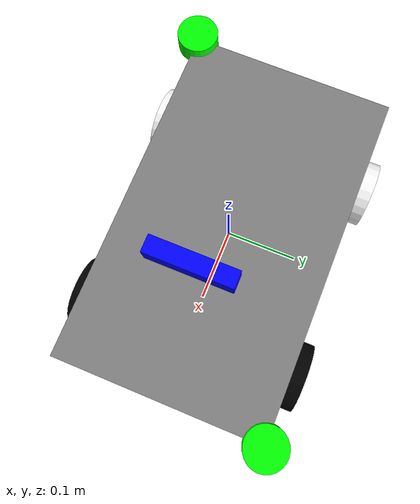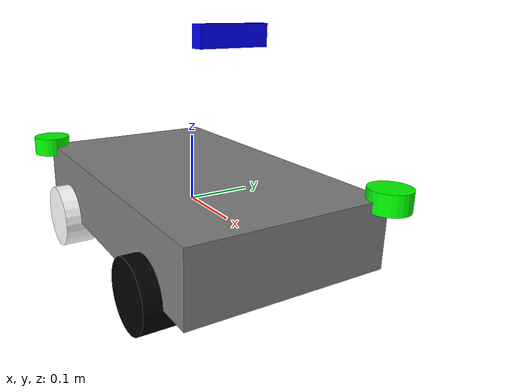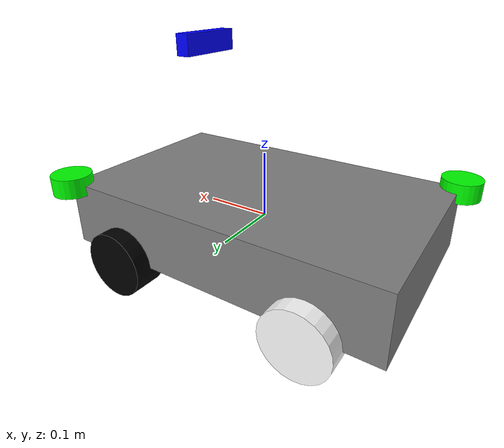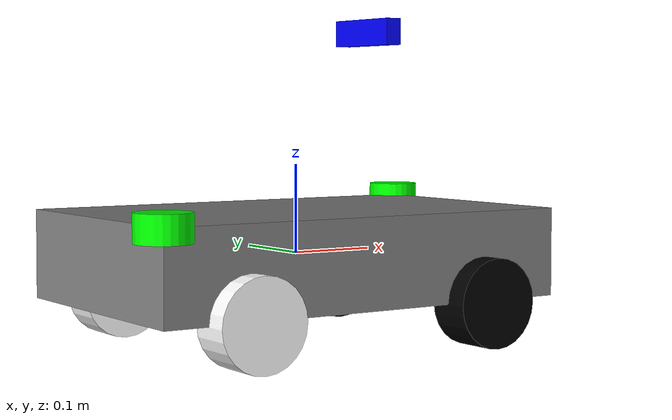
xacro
<?xml version="1.0"?>
<robot xmlns:xacro="http://ros.org/wiki/xacro" name="my_robot">

  <!-- ===================== MATERIALIEN ===================== -->
  <material name="grey">
    <color rgba="0.5 0.5 0.5 1"/>
  </material>

  <material name="blue">
    <color rgba="0 0 1 1"/>
  </material>

  <material name="green">
    <color rgba="0 1 0 1"/>
  </material>

  <material name="black">
    <color rgba="0 0 0 1"/>
  </material>

  <material name="white">
    <color rgba="1 1 1 1"/>
  </material>

  <material name="red">
    <color rgba="1 0 0 1"/>
  </material>

  <!-- ===================== BASIS ===================== -->
  <link name="base_link">
    <visual>
      <geometry>
        <box size="0.5 0.3 0.1"/>
      </geometry>
      <material name="grey"/>
    </visual>
    <collision>
      <geometry>
        <box size="0.5 0.3 0.1"/>
      </geometry>
    </collision>
  </link>

  <!-- ===================== KAMERA ===================== -->
  <link name="camera_link">
    <visual>
      <geometry>
        <box size="0.10 0.03 0.02"/>
      </geometry>
      <material name="blue"/>
    </visual>
  </link>

  <joint name="base_to_camera" type="fixed">
    <parent link="base_link"/>
    <child link="camera_link"/>
    <origin xyz="0.1 0.0 0.25" rpy="-1.5708 0 -1.5708"/>
  </joint>

  <!-- ===================== LIDAR FRONT ===================== -->
  <link name="lidar_front_link">
    <visual>
      <geometry>
        <cylinder length="0.03" radius="0.03"/>
      </geometry>
      <material name="green"/>
    </visual>
  </link>

  <joint name="base_to_lidar_front" type="fixed">
    <parent link="base_link"/>
    <child link="lidar_front_link"/>
    <origin xyz="0.25 0.15 0.05" rpy="0 0 0"/>
  </joint>

  <!-- ===================== LIDAR BACK ===================== -->
  <link name="lidar_back_link">
    <visual>
      <geometry>
        <cylinder length="0.03" radius="0.03"/>
      </geometry>
      <material name="green"/>
    </visual>
  </link>

  <joint name="base_to_lidar_back" type="fixed">
    <parent link="base_link"/>
    <child link="lidar_back_link"/>
    <origin xyz="-0.25 -0.15 0.05" rpy="0 0 0"/>
  </joint>

  <!-- ===================== FRONT-RÄDER (ANGETRIEBEN) ===================== -->
<!-- Link für das linke vordere Rad -->
<link name="wheel_left_link_front">
  <visual>
    <geometry>
      <cylinder length="0.05" radius="0.05"/>
    </geometry>
    <material name="black"/>
  </visual>
</link>

<!-- Revolute Joint für angetriebenes Rad -->
<joint name="wheel_left_joint_front" type="fixed">
  <parent link="base_link"/>
  <child link="wheel_left_link_front"/>
  <origin xyz="0.15 -0.15 -0.05" rpy="1.5708 0 0"/> <!-- Zylinder horizontal -->
  <axis xyz="0 0 0"/>  <!-- Rotation sichtbar -->
</joint>

<!-- Link für das rechte vordere Rad -->
<link name="wheel_right_link_front">
  <visual>
    <geometry>
      <cylinder length="0.05" radius="0.05"/>
    </geometry>
    <material name="black"/>
  </visual>
</link>

<!-- Revolute Joint für angetriebenes Rad -->
<joint name="wheel_right_joint_front" type="fixed">
  <parent link="base_link"/>
  <child link="wheel_right_link_front"/>
  <origin xyz="0.15 0.15 -0.05" rpy="1.5708 0 3.1415"/>
  <axis xyz="0 0 0"/>
</joint>

  <!-- ===================== HINTER-RÄDER (NICHT ANGETRIEBEN) ===================== -->
  <!-- Link für das linke hintere Rad -->
  <link name="wheel_left_link_back">
    <visual>
      <geometry>
        <cylinder length="0.05" radius="0.05"/>
      </geometry>
      <material name="white"/>
    </visual>
  </link>

  <!-- Fixed Joint für nicht angetriebenes Rad -->
  <joint name="base_to_wheel_left_back" type="fixed">
    <parent link="base_link"/>
    <child link="wheel_left_link_back"/>
    <origin xyz="-0.15 -0.15 -0.05" rpy="1.5708 0 0"/>
  </joint>

  <!-- Link für das rechte hintere Rad -->
  <link name="wheel_right_link_back">
    <visual>
      <geometry>
        <cylinder length="0.05" radius="0.05"/>
      </geometry>
      <material name="white"/>
    </visual>
  </link>

  <!-- Fixed Joint für nicht angetriebenes Rad -->
  <joint name="base_to_wheel_right_back" type="fixed">
    <parent link="base_link"/>
    <child link="wheel_right_link_back"/>
    <origin xyz="-0.15 0.15 -0.05" rpy="1.5708 0 3.1415"/>
  </joint>

</robot>
